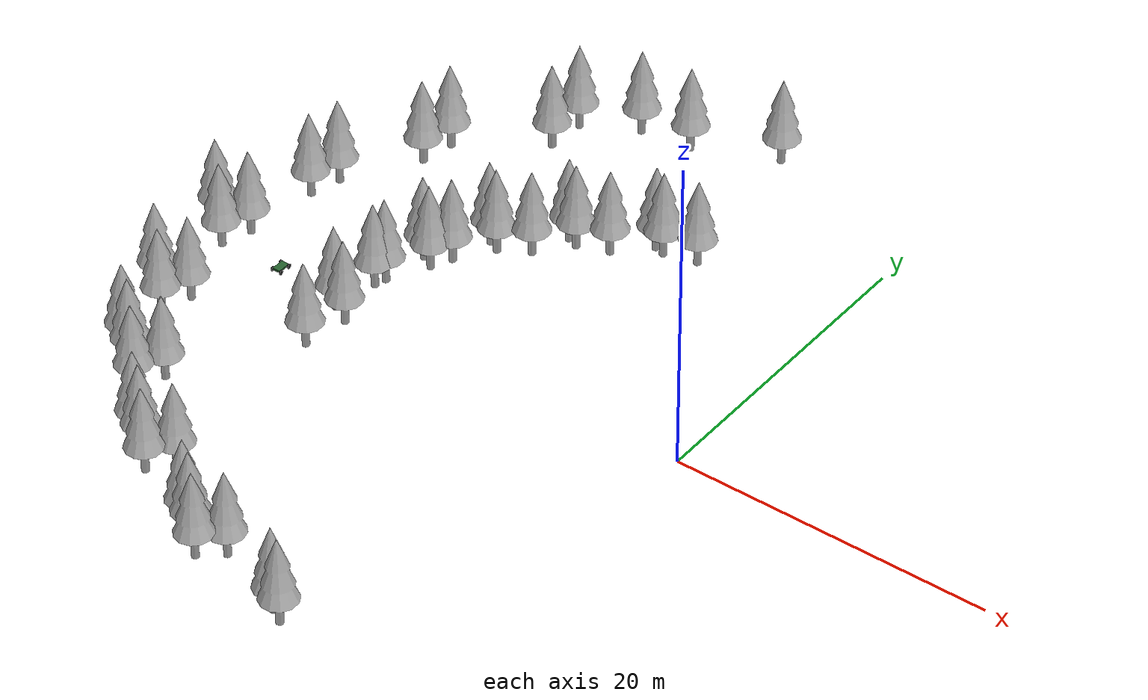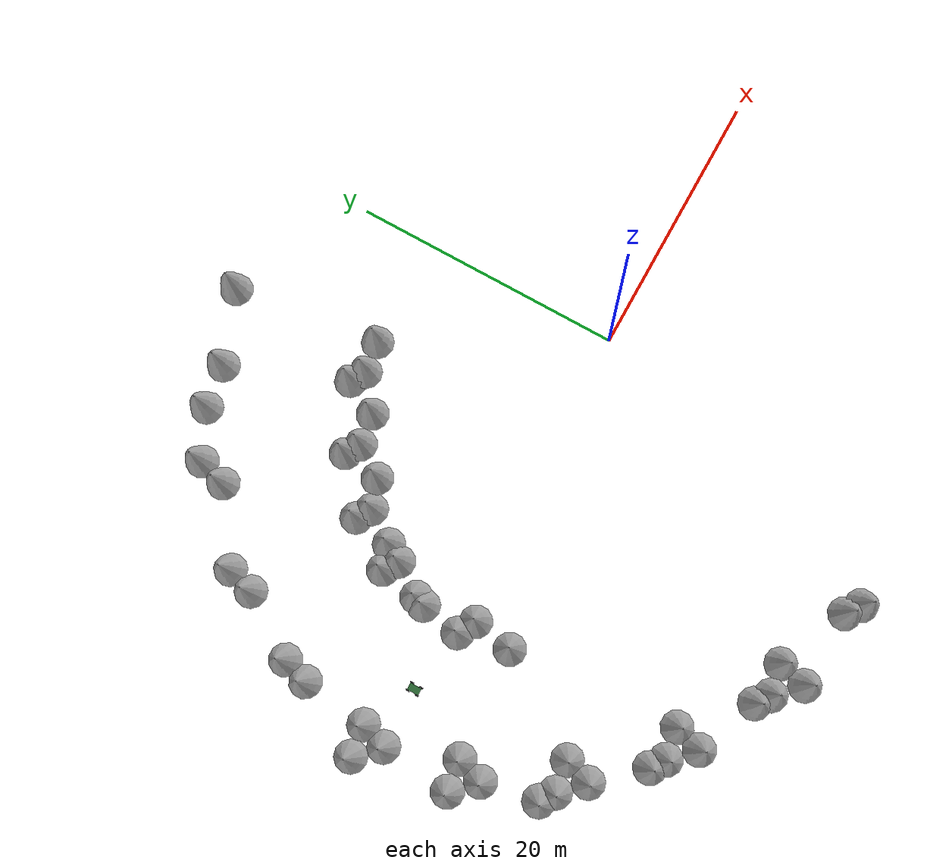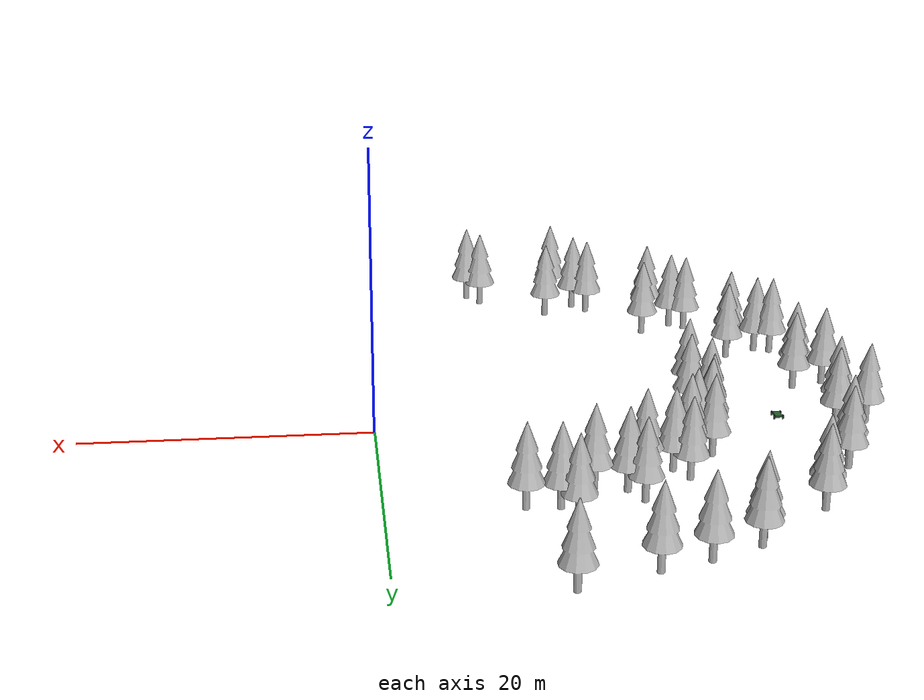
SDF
<sdf version="1.9">
 <world name="nomad_forest">
  <model name="tree_074">
   <static>true</static>
   <pose>-10.099847533485702 24.314071483515775 1.1594365729654315 0 0 1.832595714594046</pose>
   <link name="link">
    <visual name="visual">
     <geometry><mesh><uri>../assets/models/pine_tree.obj</uri><scale>1.3 1.3 1.3</scale></mesh></geometry>
    </visual>
    <collision name="trunk">
     <pose>0 0 2.08 0 0 0</pose>
     <geometry><cylinder><radius>0.26</radius><length>4.16</length></cylinder></geometry>
    </collision>
   </link>
  </model>
  <model name="tree_080">
   <static>true</static>
   <pose>-10.799999999999995 13.524355652982143 0.7199490922569763 0 0 2.0943951023931953</pose>
   <link name="link">
    <visual name="visual">
     <geometry><mesh><uri>../assets/models/pine_tree.obj</uri><scale>1.3 1.3 1.3</scale></mesh></geometry>
    </visual>
    <collision name="trunk">
     <pose>0 0 2.08 0 0 0</pose>
     <geometry><cylinder><radius>0.26</radius><length>4.16</length></cylinder></geometry>
    </collision>
   </link>
  </model>
  <model name="tree_082">
   <static>true</static>
   <pose>-11.799999999999995 14.224355652982142 0.2552859150534508 0 0 2.0943951023931953</pose>
   <link name="link">
    <visual name="visual">
     <geometry><mesh><uri>../assets/models/pine_tree.obj</uri><scale>1.3 1.3 1.3</scale></mesh></geometry>
    </visual>
    <collision name="trunk">
     <pose>0 0 2.08 0 0 0</pose>
     <geometry><cylinder><radius>0.26</radius><length>4.16</length></cylinder></geometry>
    </collision>
   </link>
  </model>
  <model name="tree_083">
   <static>true</static>
   <pose>-8.599999999999994 13.824355652982142 0.9395404902784181 0 0 2.0943951023931953</pose>
   <link name="link">
    <visual name="visual">
     <geometry><mesh><uri>../assets/models/pine_tree.obj</uri><scale>1.3 1.3 1.3</scale></mesh></geometry>
    </visual>
    <collision name="trunk">
     <pose>0 0 2.08 0 0 0</pose>
     <geometry><cylinder><radius>0.26</radius><length>4.16</length></cylinder></geometry>
    </collision>
   </link>
  </model>
  <model name="tree_084">
   <static>true</static>
   <pose>-18.299999999999994 21.716660498395406 1.1888628931865084 0 0 2.0943951023931953</pose>
   <link name="link">
    <visual name="visual">
     <geometry><mesh><uri>../assets/models/pine_tree.obj</uri><scale>1.3 1.3 1.3</scale></mesh></geometry>
    </visual>
    <collision name="trunk">
     <pose>0 0 2.08 0 0 0</pose>
     <geometry><cylinder><radius>0.26</radius><length>4.16</length></cylinder></geometry>
    </collision>
   </link>
  </model>
  <model name="tree_086">
   <static>true</static>
   <pose>-15.199999999999992 22.316660498395407 0.979058346341516 0 0 2.0943951023931953</pose>
   <link name="link">
    <visual name="visual">
     <geometry><mesh><uri>../assets/models/pine_tree.obj</uri><scale>1.3 1.3 1.3</scale></mesh></geometry>
    </visual>
    <collision name="trunk">
     <pose>0 0 2.08 0 0 0</pose>
     <geometry><cylinder><radius>0.26</radius><length>4.16</length></cylinder></geometry>
    </collision>
   </link>
  </model>
  <model name="tree_089">
   <static>true</static>
   <pose>-16.856349186104044 9.099494936611665 0.7390574636543981 0 0 2.356194490192345</pose>
   <link name="link">
    <visual name="visual">
     <geometry><mesh><uri>../assets/models/pine_tree.obj</uri><scale>1.3 1.3 1.3</scale></mesh></geometry>
    </visual>
    <collision name="trunk">
     <pose>0 0 2.08 0 0 0</pose>
     <geometry><cylinder><radius>0.26</radius><length>4.16</length></cylinder></geometry>
    </collision>
   </link>
  </model>
  <model name="tree_090">
   <static>true</static>
   <pose>-15.356349186104044 11.299494936611666 0.5533684047109366 0 0 2.356194490192345</pose>
   <link name="link">
    <visual name="visual">
     <geometry><mesh><uri>../assets/models/pine_tree.obj</uri><scale>1.3 1.3 1.3</scale></mesh></geometry>
    </visual>
    <collision name="trunk">
     <pose>0 0 2.08 0 0 0</pose>
     <geometry><cylinder><radius>0.26</radius><length>4.16</length></cylinder></geometry>
    </collision>
   </link>
  </model>
  <model name="tree_092">
   <static>true</static>
   <pose>-16.356349186104044 11.999494936611665 0.15019845732819703 0 0 2.356194490192345</pose>
   <link name="link">
    <visual name="visual">
     <geometry><mesh><uri>../assets/models/pine_tree.obj</uri><scale>1.3 1.3 1.3</scale></mesh></geometry>
    </visual>
    <collision name="trunk">
     <pose>0 0 2.08 0 0 0</pose>
     <geometry><cylinder><radius>0.26</radius><length>4.16</length></cylinder></geometry>
    </collision>
   </link>
  </model>
  <model name="tree_093">
   <static>true</static>
   <pose>-13.156349186104043 11.599494936611665 0.9478469004458115 0 0 2.356194490192345</pose>
   <link name="link">
    <visual name="visual">
     <geometry><mesh><uri>../assets/models/pine_tree.obj</uri><scale>1.3 1.3 1.3</scale></mesh></geometry>
    </visual>
    <collision name="trunk">
     <pose>0 0 2.08 0 0 0</pose>
     <geometry><cylinder><radius>0.26</radius><length>4.16</length></cylinder></geometry>
    </collision>
   </link>
  </model>
  <model name="tree_096">
   <static>true</static>
   <pose>-22.241630560342614 18.18477631085024 0.5174783984196747 0 0 2.356194490192345</pose>
   <link name="link">
    <visual name="visual">
     <geometry><mesh><uri>../assets/models/pine_tree.obj</uri><scale>1.3 1.3 1.3</scale></mesh></geometry>
    </visual>
    <collision name="trunk">
     <pose>0 0 2.08 0 0 0</pose>
     <geometry><cylinder><radius>0.26</radius><length>4.16</length></cylinder></geometry>
    </collision>
   </link>
  </model>
  <model name="tree_098">
   <static>true</static>
   <pose>-21.641630560342616 20.084776310850238 1.0820073558807337 0 0 2.356194490192345</pose>
   <link name="link">
    <visual name="visual">
     <geometry><mesh><uri>../assets/models/pine_tree.obj</uri><scale>1.3 1.3 1.3</scale></mesh></geometry>
    </visual>
    <collision name="trunk">
     <pose>0 0 2.08 0 0 0</pose>
     <geometry><cylinder><radius>0.26</radius><length>4.16</length></cylinder></geometry>
    </collision>
   </link>
  </model>
  <model name="tree_099">
   <static>true</static>
   <pose>-20.352558883257647 6.200000000000005 0.40381638068584524 0 0 2.617993877991494</pose>
   <link name="link">
    <visual name="visual">
     <geometry><mesh><uri>../assets/models/pine_tree.obj</uri><scale>1.3 1.3 1.3</scale></mesh></geometry>
    </visual>
    <collision name="trunk">
     <pose>0 0 2.08 0 0 0</pose>
     <geometry><cylinder><radius>0.26</radius><length>4.16</length></cylinder></geometry>
    </collision>
   </link>
  </model>
  <model name="tree_100">
   <static>true</static>
   <pose>-18.852558883257647 8.400000000000004 0.4148376312903715 0 0 2.617993877991494</pose>
   <link name="link">
    <visual name="visual">
     <geometry><mesh><uri>../assets/models/pine_tree.obj</uri><scale>1.3 1.3 1.3</scale></mesh></geometry>
    </visual>
    <collision name="trunk">
     <pose>0 0 2.08 0 0 0</pose>
     <geometry><cylinder><radius>0.26</radius><length>4.16</length></cylinder></geometry>
    </collision>
   </link>
  </model>
  <model name="tree_102">
   <static>true</static>
   <pose>-19.852558883257647 9.100000000000005 0.10019452249799804 0 0 2.617993877991494</pose>
   <link name="link">
    <visual name="visual">
     <geometry><mesh><uri>../assets/models/pine_tree.obj</uri><scale>1.3 1.3 1.3</scale></mesh></geometry>
    </visual>
    <collision name="trunk">
     <pose>0 0 2.08 0 0 0</pose>
     <geometry><cylinder><radius>0.26</radius><length>4.16</length></cylinder></geometry>
    </collision>
   </link>
  </model>
  <model name="tree_106">
   <static>true</static>
   <pose>-27.64486372867091 12.80000000000001 0.19839065976537337 0 0 2.617993877991494</pose>
   <link name="link">
    <visual name="visual">
     <geometry><mesh><uri>../assets/models/pine_tree.obj</uri><scale>1.3 1.3 1.3</scale></mesh></geometry>
    </visual>
    <collision name="trunk">
     <pose>0 0 2.08 0 0 0</pose>
     <geometry><cylinder><radius>0.26</radius><length>4.16</length></cylinder></geometry>
    </collision>
   </link>
  </model>
  <model name="tree_108">
   <static>true</static>
   <pose>-27.04486372867091 14.700000000000008 0.45710966432392 0 0 2.617993877991494</pose>
   <link name="link">
    <visual name="visual">
     <geometry><mesh><uri>../assets/models/pine_tree.obj</uri><scale>1.3 1.3 1.3</scale></mesh></geometry>
    </visual>
    <collision name="trunk">
     <pose>0 0 2.08 0 0 0</pose>
     <geometry><cylinder><radius>0.26</radius><length>4.16</length></cylinder></geometry>
    </collision>
   </link>
  </model>
  <model name="tree_109">
   <static>true</static>
   <pose>-22.550368178359502 2.823466631435294 0.029170377197697148 0 0 2.8797932657906435</pose>
   <link name="link">
    <visual name="visual">
     <geometry><mesh><uri>../assets/models/pine_tree.obj</uri><scale>1.3 1.3 1.3</scale></mesh></geometry>
    </visual>
    <collision name="trunk">
     <pose>0 0 2.08 0 0 0</pose>
     <geometry><cylinder><radius>0.26</radius><length>4.16</length></cylinder></geometry>
    </collision>
   </link>
  </model>
  <model name="tree_110">
   <static>true</static>
   <pose>-21.050368178359502 5.023466631435294 0.3049192951361734 0 0 2.8797932657906435</pose>
   <link name="link">
    <visual name="visual">
     <geometry><mesh><uri>../assets/models/pine_tree.obj</uri><scale>1.3 1.3 1.3</scale></mesh></geometry>
    </visual>
    <collision name="trunk">
     <pose>0 0 2.08 0 0 0</pose>
     <geometry><cylinder><radius>0.26</radius><length>4.16</length></cylinder></geometry>
    </collision>
   </link>
  </model>
  <model name="tree_112">
   <static>true</static>
   <pose>-22.050368178359502 5.723466631435294 0.08154845040291638 0 0 2.8797932657906435</pose>
   <link name="link">
    <visual name="visual">
     <geometry><mesh><uri>../assets/models/pine_tree.obj</uri><scale>1.3 1.3 1.3</scale></mesh></geometry>
    </visual>
    <collision name="trunk">
     <pose>0 0 2.08 0 0 0</pose>
     <geometry><cylinder><radius>0.26</radius><length>4.16</length></cylinder></geometry>
    </collision>
   </link>
  </model>
  <model name="tree_116">
   <static>true</static>
   <pose>-31.04147809382832 6.529295172665546 0.043495435058589764 0 0 2.8797932657906435</pose>
   <link name="link">
    <visual name="visual">
     <geometry><mesh><uri>../assets/models/pine_tree.obj</uri><scale>1.3 1.3 1.3</scale></mesh></geometry>
    </visual>
    <collision name="trunk">
     <pose>0 0 2.08 0 0 0</pose>
     <geometry><cylinder><radius>0.26</radius><length>4.16</length></cylinder></geometry>
    </collision>
   </link>
  </model>
  <model name="tree_118">
   <static>true</static>
   <pose>-30.441478093828323 8.429295172665546 0.13152269016724172 0 0 2.8797932657906435</pose>
   <link name="link">
    <visual name="visual">
     <geometry><mesh><uri>../assets/models/pine_tree.obj</uri><scale>1.3 1.3 1.3</scale></mesh></geometry>
    </visual>
    <collision name="trunk">
     <pose>0 0 2.08 0 0 0</pose>
     <geometry><cylinder><radius>0.26</radius><length>4.16</length></cylinder></geometry>
    </collision>
   </link>
  </model>
  <model name="tree_119">
   <static>true</static>
   <pose>-23.3 -0.7999999999999984 0.0 0 0 3.141592653589793</pose>
   <link name="link">
    <visual name="visual">
     <geometry><mesh><uri>../assets/models/pine_tree.obj</uri><scale>1.3 1.3 1.3</scale></mesh></geometry>
    </visual>
    <collision name="trunk">
     <pose>0 0 2.08 0 0 0</pose>
     <geometry><cylinder><radius>0.26</radius><length>4.16</length></cylinder></geometry>
    </collision>
   </link>
  </model>
  <model name="tree_122">
   <static>true</static>
   <pose>-22.8 2.100000000000002 0.008243938567174045 0 0 3.141592653589793</pose>
   <link name="link">
    <visual name="visual">
     <geometry><mesh><uri>../assets/models/pine_tree.obj</uri><scale>1.3 1.3 1.3</scale></mesh></geometry>
    </visual>
    <collision name="trunk">
     <pose>0 0 2.08 0 0 0</pose>
     <geometry><cylinder><radius>0.26</radius><length>4.16</length></cylinder></geometry>
    </collision>
   </link>
  </model>
  <model name="tree_125">
   <static>true</static>
   <pose>-33.8 1.400000000000003 0.06261570109827773 0 0 3.141592653589793</pose>
   <link name="link">
    <visual name="visual">
     <geometry><mesh><uri>../assets/models/pine_tree.obj</uri><scale>1.3 1.3 1.3</scale></mesh></geometry>
    </visual>
    <collision name="trunk">
     <pose>0 0 2.08 0 0 0</pose>
     <geometry><cylinder><radius>0.26</radius><length>4.16</length></cylinder></geometry>
    </collision>
   </link>
  </model>
  <model name="tree_126">
   <static>true</static>
   <pose>-32.2 -0.19999999999999682 0.0 0 0 3.141592653589793</pose>
   <link name="link">
    <visual name="visual">
     <geometry><mesh><uri>../assets/models/pine_tree.obj</uri><scale>1.3 1.3 1.3</scale></mesh></geometry>
    </visual>
    <collision name="trunk">
     <pose>0 0 2.08 0 0 0</pose>
     <geometry><cylinder><radius>0.26</radius><length>4.16</length></cylinder></geometry>
    </collision>
   </link>
  </model>
  <model name="tree_128">
   <static>true</static>
   <pose>-31.6 1.700000000000003 0.0 0 0 3.141592653589793</pose>
   <link name="link">
    <visual name="visual">
     <geometry><mesh><uri>../assets/models/pine_tree.obj</uri><scale>1.3 1.3 1.3</scale></mesh></geometry>
    </visual>
    <collision name="trunk">
     <pose>0 0 2.08 0 0 0</pose>
     <geometry><cylinder><radius>0.26</radius><length>4.16</length></cylinder></geometry>
    </collision>
   </link>
  </model>
  <model name="tree_129">
   <static>true</static>
   <pose>-22.550368178359506 -4.423466631435285 0.04499746954856291 0 0 3.4033920413889422</pose>
   <link name="link">
    <visual name="visual">
     <geometry><mesh><uri>../assets/models/pine_tree.obj</uri><scale>1.3 1.3 1.3</scale></mesh></geometry>
    </visual>
    <collision name="trunk">
     <pose>0 0 2.08 0 0 0</pose>
     <geometry><cylinder><radius>0.26</radius><length>4.16</length></cylinder></geometry>
    </collision>
   </link>
  </model>
  <model name="tree_132">
   <static>true</static>
   <pose>-22.050368178359506 -1.523466631435285 0.05069061655145518 0 0 3.4033920413889422</pose>
   <link name="link">
    <visual name="visual">
     <geometry><mesh><uri>../assets/models/pine_tree.obj</uri><scale>1.3 1.3 1.3</scale></mesh></geometry>
    </visual>
    <collision name="trunk">
     <pose>0 0 2.08 0 0 0</pose>
     <geometry><cylinder><radius>0.26</radius><length>4.16</length></cylinder></geometry>
    </collision>
   </link>
  </model>
  <model name="tree_135">
   <static>true</static>
   <pose>-32.641478093828326 -5.32929517266553 0.16213667420515843 0 0 3.4033920413889422</pose>
   <link name="link">
    <visual name="visual">
     <geometry><mesh><uri>../assets/models/pine_tree.obj</uri><scale>1.3 1.3 1.3</scale></mesh></geometry>
    </visual>
    <collision name="trunk">
     <pose>0 0 2.08 0 0 0</pose>
     <geometry><cylinder><radius>0.26</radius><length>4.16</length></cylinder></geometry>
    </collision>
   </link>
  </model>
  <model name="tree_136">
   <static>true</static>
   <pose>-31.041478093828328 -6.92929517266553 0.07156976532075641 0 0 3.4033920413889422</pose>
   <link name="link">
    <visual name="visual">
     <geometry><mesh><uri>../assets/models/pine_tree.obj</uri><scale>1.3 1.3 1.3</scale></mesh></geometry>
    </visual>
    <collision name="trunk">
     <pose>0 0 2.08 0 0 0</pose>
     <geometry><cylinder><radius>0.26</radius><length>4.16</length></cylinder></geometry>
    </collision>
   </link>
  </model>
  <model name="tree_138">
   <static>true</static>
   <pose>-30.44147809382833 -5.029295172665529 0.0 0 0 3.4033920413889422</pose>
   <link name="link">
    <visual name="visual">
     <geometry><mesh><uri>../assets/models/pine_tree.obj</uri><scale>1.3 1.3 1.3</scale></mesh></geometry>
    </visual>
    <collision name="trunk">
     <pose>0 0 2.08 0 0 0</pose>
     <geometry><cylinder><radius>0.26</radius><length>4.16</length></cylinder></geometry>
    </collision>
   </link>
  </model>
  <model name="tree_143">
   <static>true</static>
   <pose>-29.24486372867092 -11.599999999999993 0.31828842564805704 0 0 3.665191429188092</pose>
   <link name="link">
    <visual name="visual">
     <geometry><mesh><uri>../assets/models/pine_tree.obj</uri><scale>1.3 1.3 1.3</scale></mesh></geometry>
    </visual>
    <collision name="trunk">
     <pose>0 0 2.08 0 0 0</pose>
     <geometry><cylinder><radius>0.26</radius><length>4.16</length></cylinder></geometry>
    </collision>
   </link>
  </model>
  <model name="tree_144">
   <static>true</static>
   <pose>-27.64486372867092 -13.199999999999992 0.2679229481421724 0 0 3.665191429188092</pose>
   <link name="link">
    <visual name="visual">
     <geometry><mesh><uri>../assets/models/pine_tree.obj</uri><scale>1.3 1.3 1.3</scale></mesh></geometry>
    </visual>
    <collision name="trunk">
     <pose>0 0 2.08 0 0 0</pose>
     <geometry><cylinder><radius>0.26</radius><length>4.16</length></cylinder></geometry>
    </collision>
   </link>
  </model>
  <model name="tree_145">
   <static>true</static>
   <pose>-30.24486372867092 -10.899999999999993 0.4359643165408827 0 0 3.665191429188092</pose>
   <link name="link">
    <visual name="visual">
     <geometry><mesh><uri>../assets/models/pine_tree.obj</uri><scale>1.3 1.3 1.3</scale></mesh></geometry>
    </visual>
    <collision name="trunk">
     <pose>0 0 2.08 0 0 0</pose>
     <geometry><cylinder><radius>0.26</radius><length>4.16</length></cylinder></geometry>
    </collision>
   </link>
  </model>
  <model name="tree_146">
   <static>true</static>
   <pose>-27.044863728670922 -11.299999999999994 0.0 0 0 3.665191429188092</pose>
   <link name="link">
    <visual name="visual">
     <geometry><mesh><uri>../assets/models/pine_tree.obj</uri><scale>1.3 1.3 1.3</scale></mesh></geometry>
    </visual>
    <collision name="trunk">
     <pose>0 0 2.08 0 0 0</pose>
     <geometry><cylinder><radius>0.26</radius><length>4.16</length></cylinder></geometry>
    </collision>
   </link>
  </model>
  <model name="tree_149">
   <static>true</static>
   <pose>-23.84163056034263 -16.984776310850226 0.43622741203999393 0 0 3.926990816987241</pose>
   <link name="link">
    <visual name="visual">
     <geometry><mesh><uri>../assets/models/pine_tree.obj</uri><scale>1.3 1.3 1.3</scale></mesh></geometry>
    </visual>
    <collision name="trunk">
     <pose>0 0 2.08 0 0 0</pose>
     <geometry><cylinder><radius>0.26</radius><length>4.16</length></cylinder></geometry>
    </collision>
   </link>
  </model>
  <model name="tree_150">
   <static>true</static>
   <pose>-22.241630560342628 -18.584776310850224 0.6620856311428582 0 0 3.926990816987241</pose>
   <link name="link">
    <visual name="visual">
     <geometry><mesh><uri>../assets/models/pine_tree.obj</uri><scale>1.3 1.3 1.3</scale></mesh></geometry>
    </visual>
    <collision name="trunk">
     <pose>0 0 2.08 0 0 0</pose>
     <geometry><cylinder><radius>0.26</radius><length>4.16</length></cylinder></geometry>
    </collision>
   </link>
  </model>
  <model name="tree_151">
   <static>true</static>
   <pose>-24.84163056034263 -16.284776310850223 0.4271102448668788 0 0 3.926990816987241</pose>
   <link name="link">
    <visual name="visual">
     <geometry><mesh><uri>../assets/models/pine_tree.obj</uri><scale>1.3 1.3 1.3</scale></mesh></geometry>
    </visual>
    <collision name="trunk">
     <pose>0 0 2.08 0 0 0</pose>
     <geometry><cylinder><radius>0.26</radius><length>4.16</length></cylinder></geometry>
    </collision>
   </link>
  </model>
  <model name="tree_152">
   <static>true</static>
   <pose>-21.64163056034263 -16.684776310850225 0.027316611858731073 0 0 3.926990816987241</pose>
   <link name="link">
    <visual name="visual">
     <geometry><mesh><uri>../assets/models/pine_tree.obj</uri><scale>1.3 1.3 1.3</scale></mesh></geometry>
    </visual>
    <collision name="trunk">
     <pose>0 0 2.08 0 0 0</pose>
     <geometry><cylinder><radius>0.26</radius><length>4.16</length></cylinder></geometry>
    </collision>
   </link>
  </model>
  <model name="tree_155">
   <static>true</static>
   <pose>-16.800000000000015 -21.116660498395397 0.6876708109241805 0 0 4.1887902047863905</pose>
   <link name="link">
    <visual name="visual">
     <geometry><mesh><uri>../assets/models/pine_tree.obj</uri><scale>1.3 1.3 1.3</scale></mesh></geometry>
    </visual>
    <collision name="trunk">
     <pose>0 0 2.08 0 0 0</pose>
     <geometry><cylinder><radius>0.26</radius><length>4.16</length></cylinder></geometry>
    </collision>
   </link>
  </model>
  <model name="tree_156">
   <static>true</static>
   <pose>-15.200000000000014 -22.716660498395395 1.148566260961126 0 0 4.1887902047863905</pose>
   <link name="link">
    <visual name="visual">
     <geometry><mesh><uri>../assets/models/pine_tree.obj</uri><scale>1.3 1.3 1.3</scale></mesh></geometry>
    </visual>
    <collision name="trunk">
     <pose>0 0 2.08 0 0 0</pose>
     <geometry><cylinder><radius>0.26</radius><length>4.16</length></cylinder></geometry>
    </collision>
   </link>
  </model>
  <model name="tree_157">
   <static>true</static>
   <pose>-17.800000000000015 -20.416660498395395 0.5499735937566521 0 0 4.1887902047863905</pose>
   <link name="link">
    <visual name="visual">
     <geometry><mesh><uri>../assets/models/pine_tree.obj</uri><scale>1.3 1.3 1.3</scale></mesh></geometry>
    </visual>
    <collision name="trunk">
     <pose>0 0 2.08 0 0 0</pose>
     <geometry><cylinder><radius>0.26</radius><length>4.16</length></cylinder></geometry>
    </collision>
   </link>
  </model>
  <model name="tree_158">
   <static>true</static>
   <pose>-14.600000000000014 -20.816660498395397 0.19418328760075065 0 0 4.1887902047863905</pose>
   <link name="link">
    <visual name="visual">
     <geometry><mesh><uri>../assets/models/pine_tree.obj</uri><scale>1.3 1.3 1.3</scale></mesh></geometry>
    </visual>
    <collision name="trunk">
     <pose>0 0 2.08 0 0 0</pose>
     <geometry><cylinder><radius>0.26</radius><length>4.16</length></cylinder></geometry>
    </collision>
   </link>
  </model>
  <model name="tree_165">
   <static>true</static>
   <pose>-8.599847533485732 -23.71407148351577 0.7523579080782871 0 0 4.45058959258554</pose>
   <link name="link">
    <visual name="visual">
     <geometry><mesh><uri>../assets/models/pine_tree.obj</uri><scale>1.3 1.3 1.3</scale></mesh></geometry>
    </visual>
    <collision name="trunk">
     <pose>0 0 2.08 0 0 0</pose>
     <geometry><cylinder><radius>0.26</radius><length>4.16</length></cylinder></geometry>
    </collision>
   </link>
  </model>
  <model name="tree_167">
   <static>true</static>
   <pose>-9.599847533485732 -23.014071483515767 0.520582091559431 0 0 4.45058959258554</pose>
   <link name="link">
    <visual name="visual">
     <geometry><mesh><uri>../assets/models/pine_tree.obj</uri><scale>1.3 1.3 1.3</scale></mesh></geometry>
    </visual>
    <collision name="trunk">
     <pose>0 0 2.08 0 0 0</pose>
     <geometry><cylinder><radius>0.26</radius><length>4.16</length></cylinder></geometry>
    </collision>
   </link>
  </model>
  <model name="nomad_vehicle" canonical_link="base_link">
   <static>false</static>
   <link name="base_link">
    <pose relative_to="__model__">0 0 0 0 0 0</pose>
    <inertial>
     <pose>0 0 0.2 0 0 0</pose>
     <mass>30</mass>
     <inertia><ixx>0.661</ixx><iyy>1.84225</iyy><izz>2.43125</izz><ixy>0</ixy><ixz>0</ixz><iyz>0</iyz></inertia>
    </inertial>
    <visual name="base_link_visual">
     <pose>0 0 0.2 0 0 0</pose>
     <geometry><box><size>0.85 0.5 0.12</size></box></geometry>
     <material><ambient>0.15 0.38 0.18 1</ambient><diffuse>0.15 0.38 0.18 1</diffuse></material>
    </visual>
    <collision name="base_link_collision">
     <pose>0 0 0.2 0 0 0</pose>
     <geometry><box><size>0.85 0.5 0.12</size></box></geometry>
    </collision>
    <sensor name="oak_rgb" type="rgbd_camera">
     <pose relative_to="base_link">0.46 0 0.29 0 0 0</pose>
     <always_on>true</always_on>
     <update_rate>30</update_rate>
     <visualize>false</visualize>
     <topic>/nomad/raw/oak/rgbd</topic>
     <gz_frame_id>oak_rgb_optical_frame</gz_frame_id>
     <camera>
      <optical_frame_id>oak_rgb_optical_frame</optical_frame_id>
      <horizontal_fov>1.20427718387609</horizontal_fov>
      <image><width>640</width><height>480</height><format>R8G8B8</format></image>
      <clip><near>0.05</near><far>40</far></clip>
      <depth_camera><clip><near>0.4</near><far>8</far></clip></depth_camera>
      <lens>
       <type>gnomonical</type>
       <intrinsics><fx>465.602889175182</fx><fy>471.026521321236</fy><cx>320</cx><cy>240</cy><s>0</s></intrinsics>
       <projection>
        <p_fx>465.602889175182</p_fx>
        <p_fy>471.026521321236</p_fy>
        <p_cx>320</p_cx>
        <p_cy>240</p_cy>
        <tx>0</tx>
        <ty>0</ty>
       </projection>
      </lens>
     </camera>
    </sensor>
    <sensor name="oak_left" type="camera">
     <pose relative_to="base_link">0.46 0.0375 0.29 0 0 0</pose>
     <always_on>true</always_on>
     <update_rate>30</update_rate>
     <visualize>false</visualize>
     <topic>/nomad/raw/oak/left/image_raw</topic>
     <gz_frame_id>oak_left_optical_frame</gz_frame_id>
     <camera>
      <optical_frame_id>oak_left_optical_frame</optical_frame_id>
      <camera_info_topic>/nomad/raw/oak/left/camera_info</camera_info_topic>
      <horizontal_fov>1.27409035395586</horizontal_fov>
      <image><width>640</width><height>480</height><format>L8</format></image>
      <clip><near>0.05</near><far>40</far></clip>
      <lens>
       <type>gnomonical</type>
       <intrinsics><fx>432.455180142659</fx><fy>432.971461265142</fy><cx>320</cx><cy>240</cy><s>0</s></intrinsics>
       <projection>
        <p_fx>432.455180142659</p_fx>
        <p_fy>432.971461265142</p_fy>
        <p_cx>320</p_cx>
        <p_cy>240</p_cy>
        <tx>0</tx>
        <ty>0</ty>
       </projection>
      </lens>
     </camera>
    </sensor>
    <sensor name="oak_right" type="camera">
     <pose relative_to="base_link">0.46 -0.0375 0.29 0 0 0</pose>
     <always_on>true</always_on>
     <update_rate>30</update_rate>
     <visualize>false</visualize>
     <topic>/nomad/raw/oak/right/image_raw</topic>
     <gz_frame_id>oak_right_optical_frame</gz_frame_id>
     <camera>
      <optical_frame_id>oak_right_optical_frame</optical_frame_id>
      <camera_info_topic>/nomad/raw/oak/right/camera_info</camera_info_topic>
      <horizontal_fov>1.27409035395586</horizontal_fov>
      <image><width>640</width><height>480</height><format>L8</format></image>
      <clip><near>0.05</near><far>40</far></clip>
      <lens>
       <type>gnomonical</type>
       <intrinsics><fx>432.455180142659</fx><fy>432.971461265142</fy><cx>320</cx><cy>240</cy><s>0</s></intrinsics>
       <projection>
        <p_fx>432.455180142659</p_fx>
        <p_fy>432.971461265142</p_fy>
        <p_cx>320</p_cx>
        <p_cy>240</p_cy>
        <tx>-32.4341385106994</tx>
        <ty>0</ty>
       </projection>
      </lens>
     </camera>
    </sensor>
    <sensor name="ydlidar_g2" type="gpu_lidar">
     <pose relative_to="base_link">0.15 0 0.38 0 0 0</pose>
     <topic>/nomad/raw/scan</topic>
     <gz_frame_id>scan</gz_frame_id>
     <always_on>true</always_on>
     <update_rate>10</update_rate>
     <visualize>false</visualize>
     <lidar>
      <scan>
       <horizontal>
        <samples>500</samples>
        <resolution>1</resolution>
        <min_angle>-3.14159265358979</min_angle>
        <max_angle>3.12902628297543</max_angle>
       </horizontal>
       <vertical>
        <samples>1</samples>
        <resolution>1</resolution>
        <min_angle>0</min_angle>
        <max_angle>0</max_angle>
       </vertical>
      </scan>
      <range><min>0.12</min><max>12</max><resolution>0.01</resolution></range>
      <noise><type>gaussian</type><mean>0</mean><stddev>0.01</stddev></noise>
     </lidar>
    </sensor>
    <sensor name="oak_imu" type="imu">
     <pose relative_to="base_link">0.46 0 0.29 0 0 0</pose>
     <always_on>true</always_on>
     <update_rate>200</update_rate>
     <topic>/nomad/raw/oak/imu</topic>
     <gz_frame_id>oak_imu_frame</gz_frame_id>
    </sensor>
   </link>
   <link name="front_left_steering_link">
    <pose relative_to="__model__">0.36 0.3 0.15 0 0 0</pose>
    <inertial>
     <mass>0.3</mass>
     <inertia>
      <ixx>8.6875e-05</ixx>
      <iyy>8.6875e-05</iyy>
      <izz>9.375e-05</izz>
      <ixy>0</ixy>
      <ixz>0</ixz>
      <iyz>0</iyz>
     </inertia>
    </inertial>
    <visual name="front_left_steering_link_visual">
     <geometry><cylinder><radius>0.025</radius><length>0.04</length></cylinder></geometry>
     <material><ambient>0.12 0.12 0.12 1</ambient><diffuse>0.12 0.12 0.12 1</diffuse></material>
    </visual>
   </link>
   <link name="front_left_wheel">
    <pose relative_to="__model__">0.36 0.3 0.15 0 0 0</pose>
    <inertial>
     <mass>1</mass>
     <inertia>
      <ixx>0.00615833333333333</ixx>
      <iyy>0.01125</iyy>
      <izz>0.00615833333333333</izz>
      <ixy>0</ixy>
      <ixz>0</ixz>
      <iyz>0</iyz>
     </inertia>
    </inertial>
    <visual name="front_left_wheel_visual">
     <pose>0 0 0 1.5707963267949 0 0</pose>
     <geometry><cylinder><radius>0.15</radius><length>0.08</length></cylinder></geometry>
     <material><ambient>0.12 0.12 0.12 1</ambient><diffuse>0.12 0.12 0.12 1</diffuse></material>
    </visual>
    <collision name="front_left_wheel_collision">
     <pose>0 0 0 1.5707963267949 0 0</pose>
     <geometry><cylinder><radius>0.15</radius><length>0.08</length></cylinder></geometry>
     <surface><friction><ode><mu>1</mu><mu2>1</mu2></ode></friction></surface>
    </collision>
   </link>
   <link name="front_right_steering_link">
    <pose relative_to="__model__">0.36 -0.3 0.15 0 0 0</pose>
    <inertial>
     <mass>0.3</mass>
     <inertia>
      <ixx>8.6875e-05</ixx>
      <iyy>8.6875e-05</iyy>
      <izz>9.375e-05</izz>
      <ixy>0</ixy>
      <ixz>0</ixz>
      <iyz>0</iyz>
     </inertia>
    </inertial>
    <visual name="front_right_steering_link_visual">
     <geometry><cylinder><radius>0.025</radius><length>0.04</length></cylinder></geometry>
     <material><ambient>0.12 0.12 0.12 1</ambient><diffuse>0.12 0.12 0.12 1</diffuse></material>
    </visual>
   </link>
   <link name="front_right_wheel">
    <pose relative_to="__model__">0.36 -0.3 0.15 0 0 0</pose>
    <inertial>
     <mass>1</mass>
     <inertia>
      <ixx>0.00615833333333333</ixx>
      <iyy>0.01125</iyy>
      <izz>0.00615833333333333</izz>
      <ixy>0</ixy>
      <ixz>0</ixz>
      <iyz>0</iyz>
     </inertia>
    </inertial>
    <visual name="front_right_wheel_visual">
     <pose>0 0 0 1.5707963267949 0 0</pose>
     <geometry><cylinder><radius>0.15</radius><length>0.08</length></cylinder></geometry>
     <material><ambient>0.12 0.12 0.12 1</ambient><diffuse>0.12 0.12 0.12 1</diffuse></material>
    </visual>
    <collision name="front_right_wheel_collision">
     <pose>0 0 0 1.5707963267949 0 0</pose>
     <geometry><cylinder><radius>0.15</radius><length>0.08</length></cylinder></geometry>
     <surface><friction><ode><mu>1</mu><mu2>1</mu2></ode></friction></surface>
    </collision>
   </link>
   <link name="rear_left_wheel">
    <pose relative_to="__model__">-0.36 0.3 0.15 0 0 0</pose>
    <inertial>
     <mass>1</mass>
     <inertia>
      <ixx>0.00615833333333333</ixx>
      <iyy>0.01125</iyy>
      <izz>0.00615833333333333</izz>
      <ixy>0</ixy>
      <ixz>0</ixz>
      <iyz>0</iyz>
     </inertia>
    </inertial>
    <visual name="rear_left_wheel_visual">
     <pose>0 0 0 1.5707963267949 0 0</pose>
     <geometry><cylinder><radius>0.15</radius><length>0.08</length></cylinder></geometry>
     <material><ambient>0.12 0.12 0.12 1</ambient><diffuse>0.12 0.12 0.12 1</diffuse></material>
    </visual>
    <collision name="rear_left_wheel_collision">
     <pose>0 0 0 1.5707963267949 0 0</pose>
     <geometry><cylinder><radius>0.15</radius><length>0.08</length></cylinder></geometry>
     <surface><friction><ode><mu>1</mu><mu2>1</mu2></ode></friction></surface>
    </collision>
   </link>
   <link name="rear_right_wheel">
    <pose relative_to="__model__">-0.36 -0.3 0.15 0 0 0</pose>
    <inertial>
     <mass>1</mass>
     <inertia>
      <ixx>0.00615833333333333</ixx>
      <iyy>0.01125</iyy>
      <izz>0.00615833333333333</izz>
      <ixy>0</ixy>
      <ixz>0</ixz>
      <iyz>0</iyz>
     </inertia>
    </inertial>
    <visual name="rear_right_wheel_visual">
     <pose>0 0 0 1.5707963267949 0 0</pose>
     <geometry><cylinder><radius>0.15</radius><length>0.08</length></cylinder></geometry>
     <material><ambient>0.12 0.12 0.12 1</ambient><diffuse>0.12 0.12 0.12 1</diffuse></material>
    </visual>
    <collision name="rear_right_wheel_collision">
     <pose>0 0 0 1.5707963267949 0 0</pose>
     <geometry><cylinder><radius>0.15</radius><length>0.08</length></cylinder></geometry>
     <surface><friction><ode><mu>1</mu><mu2>1</mu2></ode></friction></surface>
    </collision>
   </link>
   <joint name="front_left_steering_joint" type="revolute">
    <parent>base_link</parent>
    <child>front_left_steering_link</child>
    <pose relative_to="front_left_steering_link">0 0 0 0 0 0</pose>
    <axis>
     <xyz>0 0 1</xyz>
     <limit><lower>-0.55</lower><upper>0.55</upper><effort>12</effort><velocity>2</velocity></limit>
     <dynamics><damping>0.02</damping></dynamics>
    </axis>
   </joint>
   <joint name="front_left_wheel_joint" type="revolute">
    <parent>front_left_steering_link</parent>
    <child>front_left_wheel</child>
    <pose relative_to="front_left_wheel">0 0 0 0 0 0</pose>
    <axis>
     <xyz>0 1 0</xyz>
     <limit><lower>-1e+16</lower><upper>1e+16</upper><effort>20</effort><velocity>20</velocity></limit>
     <dynamics><damping>0.02</damping></dynamics>
    </axis>
   </joint>
   <joint name="front_right_steering_joint" type="revolute">
    <parent>base_link</parent>
    <child>front_right_steering_link</child>
    <pose relative_to="front_right_steering_link">0 0 0 0 0 0</pose>
    <axis>
     <xyz>0 0 1</xyz>
     <limit><lower>-0.55</lower><upper>0.55</upper><effort>12</effort><velocity>2</velocity></limit>
     <dynamics><damping>0.02</damping></dynamics>
    </axis>
   </joint>
   <joint name="front_right_wheel_joint" type="revolute">
    <parent>front_right_steering_link</parent>
    <child>front_right_wheel</child>
    <pose relative_to="front_right_wheel">0 0 0 0 0 0</pose>
    <axis>
     <xyz>0 1 0</xyz>
     <limit><lower>-1e+16</lower><upper>1e+16</upper><effort>20</effort><velocity>20</velocity></limit>
     <dynamics><damping>0.02</damping></dynamics>
    </axis>
   </joint>
   <joint name="rear_left_wheel_joint" type="revolute">
    <parent>base_link</parent>
    <child>rear_left_wheel</child>
    <pose relative_to="rear_left_wheel">0 0 0 0 0 0</pose>
    <axis>
     <xyz>0 1 0</xyz>
     <limit><lower>-1e+16</lower><upper>1e+16</upper><effort>20</effort><velocity>20</velocity></limit>
     <dynamics><damping>0.02</damping></dynamics>
    </axis>
   </joint>
   <joint name="rear_right_wheel_joint" type="revolute">
    <parent>base_link</parent>
    <child>rear_right_wheel</child>
    <pose relative_to="rear_right_wheel">0 0 0 0 0 0</pose>
    <axis>
     <xyz>0 1 0</xyz>
     <limit><lower>-1e+16</lower><upper>1e+16</upper><effort>20</effort><velocity>20</velocity></limit>
     <dynamics><damping>0.02</damping></dynamics>
    </axis>
   </joint>
   <frame name="oak_rgb_optical_frame" attached_to="base_link">
    <pose relative_to="base_link">0.46 0 0.29 -1.5707963267949 0 -1.5707963267949</pose>
   </frame>
   <frame name="oak_depth_optical_frame" attached_to="base_link">
    <pose relative_to="base_link">0.46 0 0.29 -1.5707963267949 0 -1.5707963267949</pose>
   </frame>
   <frame name="oak_left_optical_frame" attached_to="base_link">
    <pose relative_to="base_link">0.46 0.0375 0.29 -1.5707963267949 0 -1.5707963267949</pose>
   </frame>
   <frame name="oak_right_optical_frame" attached_to="base_link">
    <pose relative_to="base_link">0.46 -0.0375 0.29 -1.5707963267949 0 -1.5707963267949</pose>
   </frame>
   <frame name="scan" attached_to="base_link"><pose relative_to="base_link">0.15 0 0.38 0 0 0</pose></frame>
   <frame name="oak_imu_frame" attached_to="base_link">
    <pose relative_to="base_link">0.46 0 0.29 0 0 0</pose>
   </frame>
   <plugin filename="gz-sim-ackermann-steering-system" name="gz::sim::systems::AckermannSteering">
    <left_joint>rear_left_wheel_joint</left_joint>
    <right_joint>rear_right_wheel_joint</right_joint>
    <left_steering_joint>front_left_steering_joint</left_steering_joint>
    <right_steering_joint>front_right_steering_joint</right_steering_joint>
    <wheel_base>0.72</wheel_base>
    <wheel_separation>0.6</wheel_separation>
    <kingpin_width>0.6</kingpin_width>
    <wheel_radius>0.15</wheel_radius>
    <steering_limit>0.55</steering_limit>
    <min_velocity>-1</min_velocity>
    <max_velocity>1</max_velocity>
    <min_acceleration>-0.6</min_acceleration>
    <max_acceleration>0.6</max_acceleration>
    <topic>/nomad/vehicle/cmd_vel</topic>
    <odom_topic>/nomad/vehicle/wheel_odom</odom_topic>
    <tf_topic>/nomad/vehicle/wheel_tf</tf_topic>
    <frame_id>odom</frame_id>
    <child_frame_id>base_link</child_frame_id>
    <odom_publish_frequency>50</odom_publish_frequency>
   </plugin>
   <plugin filename="gz-sim-odometry-publisher-system" name="gz::sim::systems::OdometryPublisher">
    <dimensions>3</dimensions>
    <odom_frame>odom</odom_frame>
    <robot_base_frame>base_link</robot_base_frame>
    <odom_topic>/nomad/vehicle/odom</odom_topic>
    <tf_topic>/nomad/vehicle/tf</tf_topic>
    <odom_publish_frequency>50</odom_publish_frequency>
    <gaussian_noise>0</gaussian_noise>
   </plugin>
   <plugin filename="gz-sim-joint-state-publisher-system" name="gz::sim::systems::JointStatePublisher">
    <topic>/nomad/vehicle/joint_states</topic>
    <update_rate>50</update_rate>
    <joint_name>front_left_steering_joint</joint_name>
    <joint_name>front_left_wheel_joint</joint_name>
    <joint_name>front_right_steering_joint</joint_name>
    <joint_name>front_right_wheel_joint</joint_name>
    <joint_name>rear_left_wheel_joint</joint_name>
    <joint_name>rear_right_wheel_joint</joint_name>
   </plugin>
   <pose>-28 0 0.03 0 0 -1.5707963267948966</pose>
  </model>
 </world>
</sdf>
